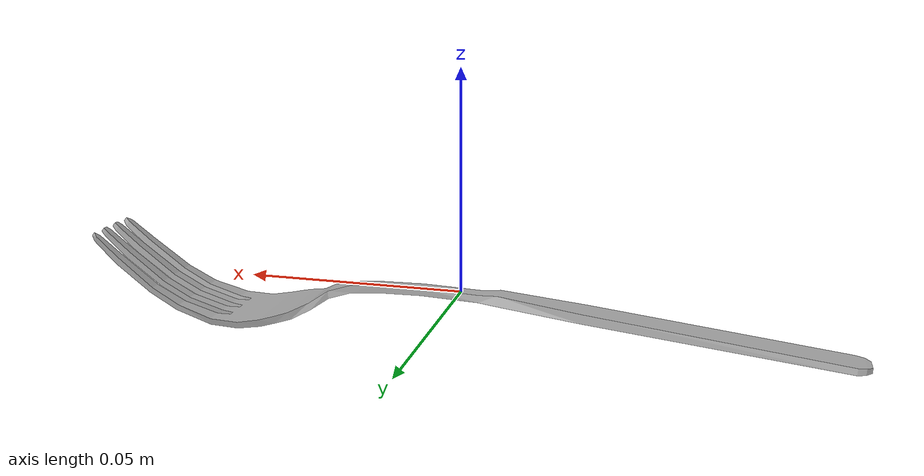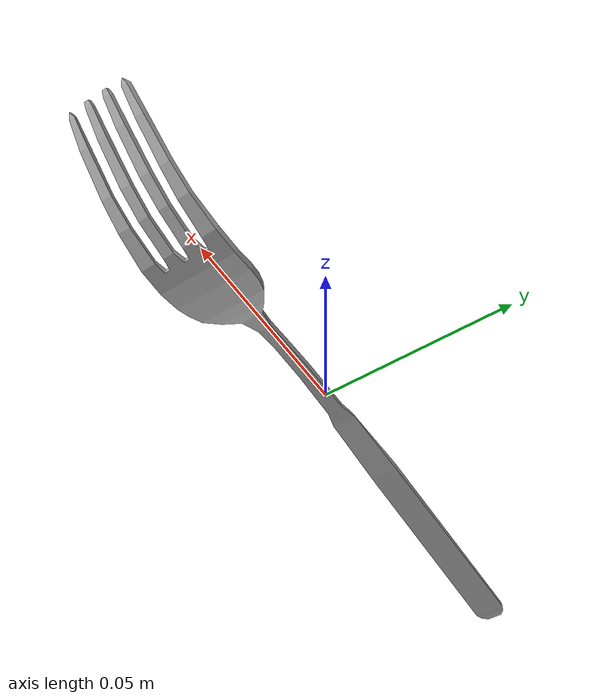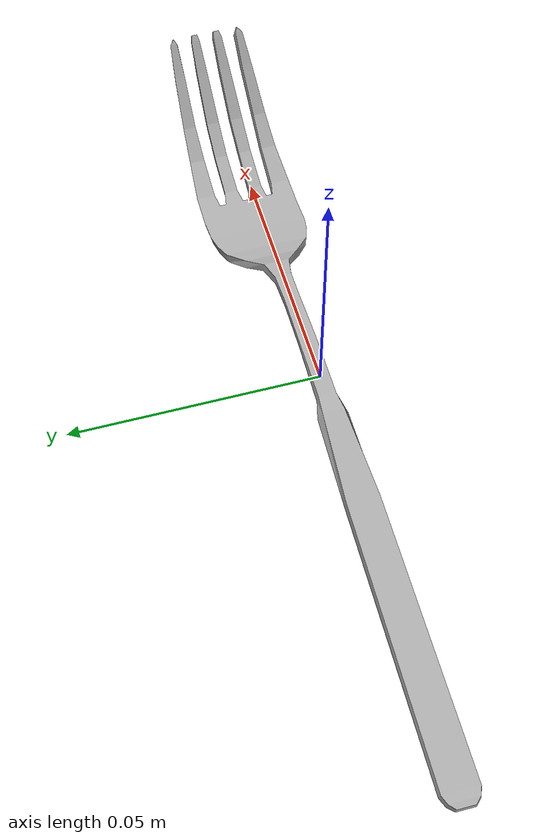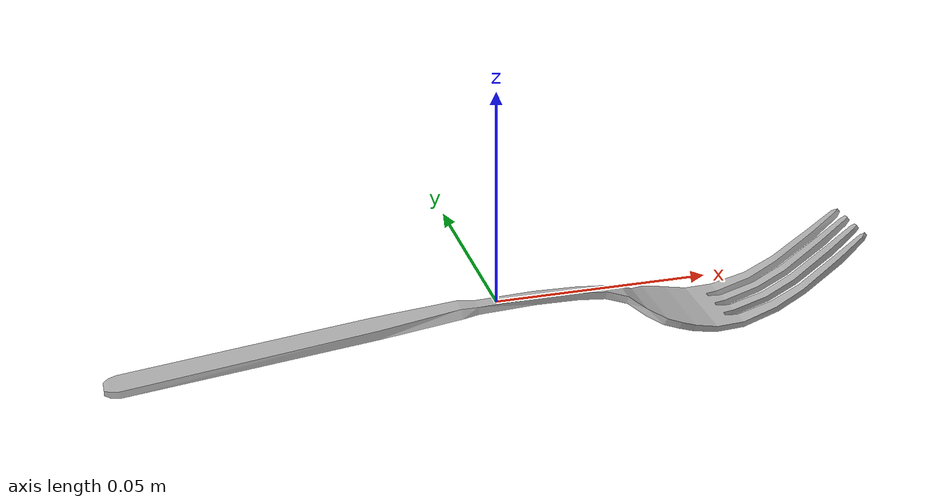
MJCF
<?xml version="1.0" ?>
<mujoco model="fork">
	<compiler meshdir="fork/meshes" texturedir="fork/textures" angle="radian" autolimits="true" balanceinertia="true" boundmass="0.000001" boundinertia="0.000001"/>
	<default>
		<default class="visual">
			<geom contype="0" conaffinity="0"/>
		</default>
		<default class="collision">
			<geom rgba="1.0 0.0 0.0 0.0"/>
		</default>
	</default>
	<asset>
		<mesh name="Fork" file="stl/Fork.stl" scale="1.0 1.0 1.0"/>
		<mesh name="Fork_001" file="stl/Fork_001.stl" scale="1.0 1.0 1.0"/>
		<mesh name="Fork_002" file="stl/Fork_002.stl" scale="1.0 1.0 1.0"/>
		<mesh name="Fork_003" file="stl/Fork_003.stl" scale="1.0 1.0 1.0"/>
		<material name="M_Fork" rgba="0.6801000237464905 0.6801000237464905 0.6801000237464905 1.0" emission="0.0"/>
	</asset>
	<worldbody>
		<body name="fork" pos="0.0 0.0 0.0" quat="1.0 0.0 0.0 0.0">
			<inertial mass="0.019516708329319954" pos="0.010070816613733768 -4.082808970906626e-07 -0.0045463936403393745" quat="0.7072190642356873 0.7069936394691467 0.0007620248361490667 -0.0007762013701722026" diaginertia="1.000617317004071e-06 5.407274511526339e-05 5.440966197056696e-05"/>
			<geom name="Fork" type="mesh" pos="0.0 0.0 0.0" quat="1.0 0.0 0.0 0.0" mesh="Fork" material="M_Fork" class="visual"/>
			<geom name="Fork_001" type="mesh" pos="0.0 0.0 0.0" quat="1.0 0.0 0.0 0.0" mesh="Fork_001" class="collision"/>
			<geom name="Fork_002" type="mesh" pos="0.0 0.0 0.0" quat="1.0 0.0 0.0 0.0" mesh="Fork_002" class="collision"/>
			<geom name="Fork_003" type="mesh" pos="0.0 0.0 0.0" quat="1.0 0.0 0.0 0.0" mesh="Fork_003" class="collision"/>
		</body>
	</worldbody>
	<equality/>
</mujoco>
